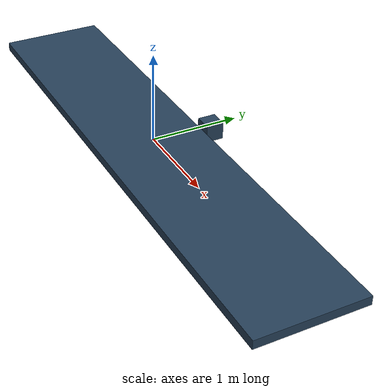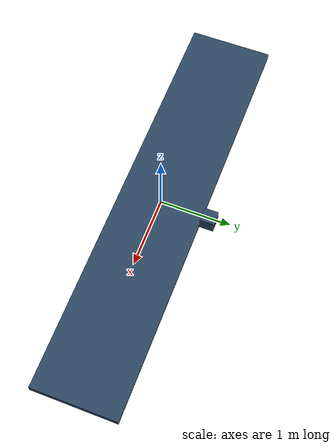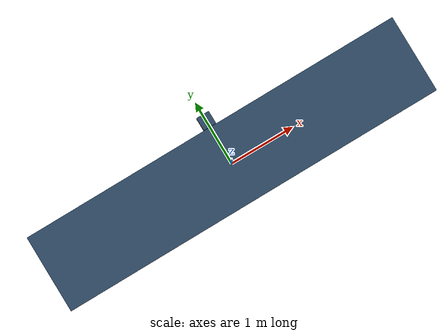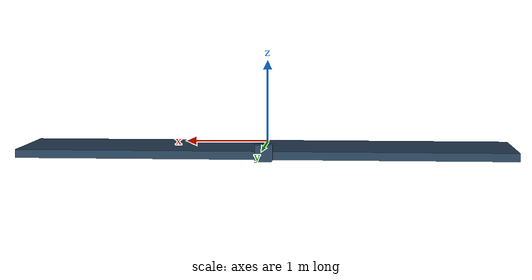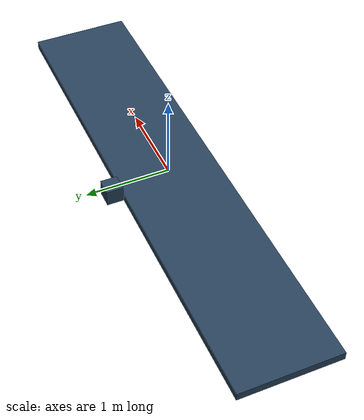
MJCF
<mujoco model="scenario">
  <option timestep="0.00050000000000000001" integrator="implicitfast"/>
  <visual>
    <global azimuth="150" elevation="-20"/>
    <headlight ambient="0.29999999999999999 0.29999999999999999 0.29999999999999999" diffuse="0.59999999999999998 0.59999999999999998 0.59999999999999998" specular="0 0 0"/>
    <rgba haze="0.14999999999999999 0.25 0.34999999999999998 1"/>
  </visual>
  <default>
    <default class="scene/"/>
  </default>
  <asset>
    <texture name="skybox" builtin="gradient" rgb1="0.29999999999999999 0.5 0.69999999999999996" rgb2="0 0 0" width="512" height="3072"/>
    <texture name="grouplane" type="2d" builtin="checker" rgb1="0.20000000000000001 0.29999999999999999 0.40000000000000002" rgb2="0.10000000000000001 0.20000000000000001 0.29999999999999999" mark="edge" markrgb="0.80000000000000004 0.80000000000000004 0.80000000000000004" width="300" height="300"/>
    <material name="groundplane_mat" class="scene/" texture="grouplane" texrepeat="5 5" texuniform="true" reflectance="0.20000000000000001"/>
  </asset>
  <worldbody>
    <light name="global_light" class="scene/" directional="false" pos="0 0 3" dir="0 0 -1"/>
    <body name="world_body" pos="0 0 0" euler="0 0 0">
      <geom name="world_geom" class="scene/" type="box" conaffinity="15" condim="3" size="0.1 0.1 0.1" pos ="0 0.7 -0.05" material="groundplane_mat"/>
      <body name="floor" pos="0 0 -0.1" euler="0 0 0">
        <joint name="floor_control" class="scene/" type="hinge" axis="0 1 0" armature="0" damping="0" frictionloss="0"/>
        <geom name="floor_geom" class="scene/" type="box" conaffinity="15" condim="3" size="3 0.6 0.05" material="groundplane_mat"/>
      </body>
    </body>
  </worldbody>

<actuator>
  <position name="floor_pos" class="scene/" kp="100000" joint="floor_control"/>
  <velocity name="floor_vel" class="scene/" kv="100000" joint="floor_control"/>
</actuator>
</mujoco>
